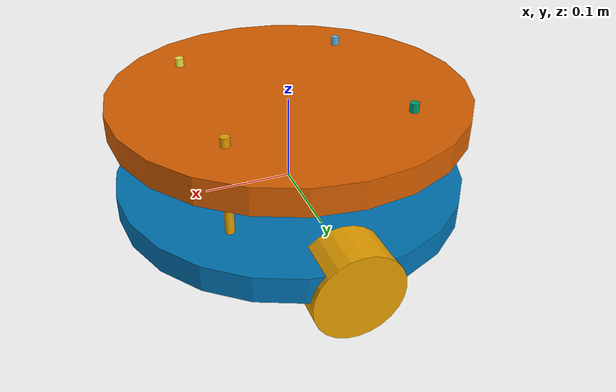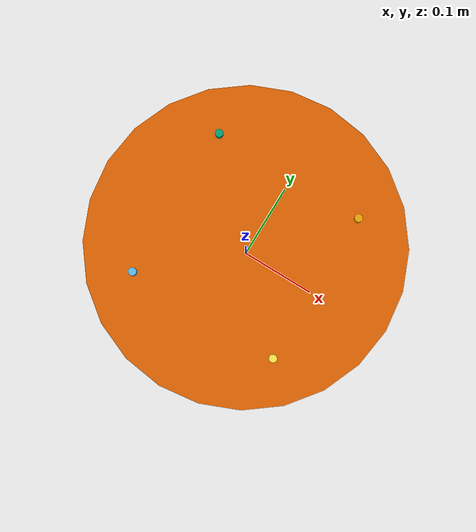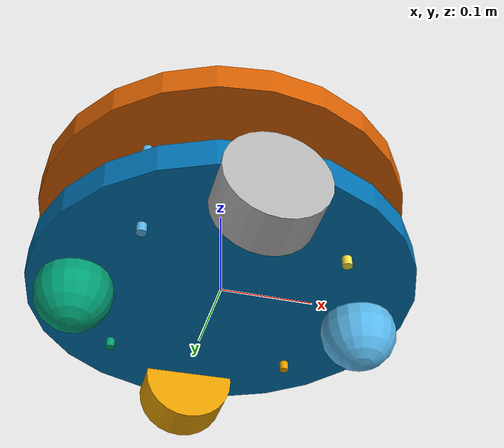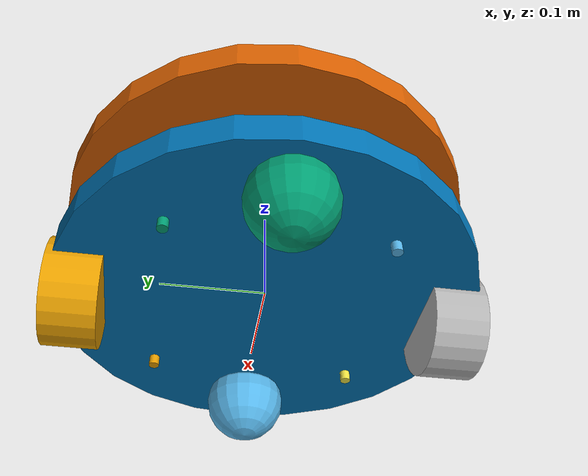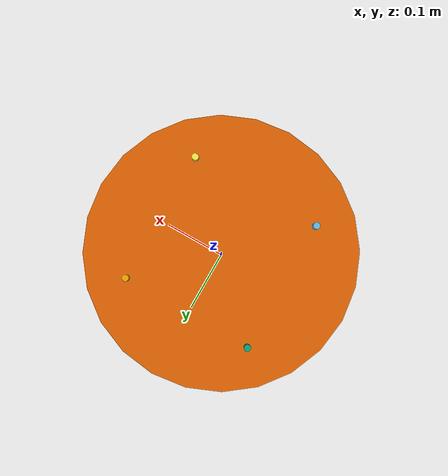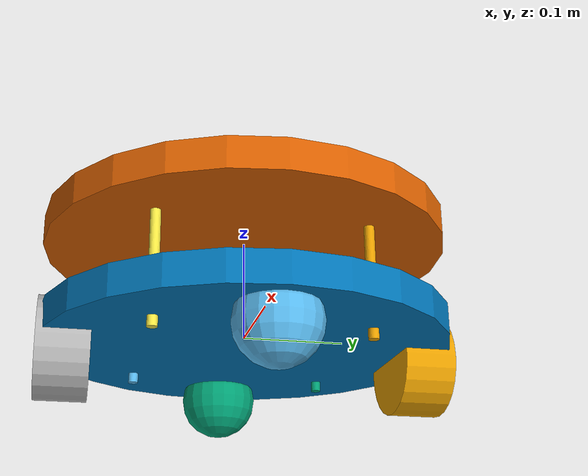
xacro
<?xml version="1.0"?>
<robot xmlns:xacro="http://ros.org/wiki/xacro" name="roboss">
    <xacro:include filename="$(find roboss_robot_description)/urdf/roboss_robot_base.xacro"/>
    <xacro:include filename="$(find roboss_robot_description)/urdf/roboss_robot_inertia.xacro"/>
    <xacro:include filename="$(find roboss_robot_description)/urdf/roboss_robot_wheel.xacro"/>
    <xacro:include filename="$(find roboss_robot_description)/urdf/roboss_robot_differential.xacro"/>
    <xacro:include filename="$(find roboss_robot_description)/urdf/roboss_robot_laser.xacro"/>
    <xacro:include filename="$(find roboss_robot_description)/urdf/roboss_robot_pole.xacro"/>
    <xacro:include filename="$(find roboss_robot_description)/urdf/roboss_robot_upper.xacro"/>

    <xacro:roboss_robot_pole xyz_pose="0.1 0.1 0.05" yon="left_1"/>
    <xacro:roboss_robot_pole xyz_pose="-0.1 -0.1 0.05" yon="right_1"/>
    <xacro:roboss_robot_pole xyz_pose="-0.1 0.1 0.05" yon="left_2"/>
    <xacro:roboss_robot_pole xyz_pose="0.1 -0.1 0.05" yon="right_2"/>
    <xacro:roboss_robot_base/>
    <xacro:roboss_robot_upper/>
    <xacro:roboss_robot_differential/>
    <xacro:roboss_robot_laser/>
    <xacro:roboss_robot_wheel xyz_konum="0.0 -0.175 -0.02" rpy_konum="0 0 0" yon="right"/>
    <xacro:roboss_robot_wheel xyz_konum="0.0 0.175 -0.02" rpy_konum="0 0 0" yon="left"/>
    <xacro:roboss_robot_caster_wheel xyz_konum="0.15 0.0 -0.03" rpy_konum="0 0 0" yon="front"/>
    <xacro:roboss_robot_caster_wheel xyz_konum="-0.15 0.0 -0.03" rpy_konum="0 0 0" yon="back"/>
</robot>

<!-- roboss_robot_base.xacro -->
<robot xmlns:xacro="http://ros.org/wiki/xacro">
  <xacro:macro name="roboss_robot_base">
     <link name="base_footprint">
       <collision>
         <origin xyz="0 0 0" rpy="0 0 0"/>
         <geometry>
            <cylinder length="0.03" radius="0.2"/>
         </geometry>
       </collision>
       <visual>
         <origin xyz="0 0 0" rpy="0 0 0"/>
         <geometry>
            <cylinder length="0.03" radius="0.2"/>
         </geometry>
       </visual>
       <xacro:cylinder_inertial radius="0.2" length="0.03" mass="10.0"/>
     </link>

     <gazebo reference="base_footprint">
       <material value="Gazebo/Blue"/>
     </gazebo>
  </xacro:macro>
</robot>

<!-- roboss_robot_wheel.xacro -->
<robot xmlns:xacro="http://ros.org/wiki/xacro">
  <xacro:macro name="roboss_robot_wheel" params="xyz_konum rpy_konum yon">
    <link name="wheel_${yon}_link">
      <collision>
        <origin xyz="0 0 0" rpy="0 1.570796 1.570796" />
        <geometry>
          <cylinder radius="0.05" length="0.05" />
        </geometry>
      </collision>
      <visual>
        <origin xyz="0 0 0" rpy="0 1.570796 1.570796" />
        <geometry>
          <cylinder radius="0.05" length="0.05" />
        </geometry>
      </visual>
      <xacro:cylinder_inertial radius="0.05" length="0.05" mass="0.5" />
    </link>

    <joint name="wheel_${yon}_base" type="continuous">
      <origin xyz="${xyz_konum}" rpy="${rpy_konum}" />
      <parent link="base_footprint" />
      <child link="wheel_${yon}_link" />
      <axis xyz="0 1 0" />
    </joint>

    <gazebo reference="wheel_${yon}_link">
      <material value="Gazebo/Black" />
    </gazebo>

  </xacro:macro>

  <xacro:macro name="roboss_robot_caster_wheel" params="xyz_konum rpy_konum yon">
    <link name="caster_wheel_${yon}_link">
      <collision>
         <origin xyz="0 0 0" rpy="0 0 0"/>
         <geometry>
           <sphere radius="0.04"/>
         </geometry>
      </collision>
      <visual>
         <origin xyz="0 0 0" rpy="0 0 0"/>
         <geometry>
           <sphere radius="0.04"/>
         </geometry>
      </visual>
      <xacro:sphere_inertial radius="0.04" mass="0.05"/>
    </link>

    <joint name="caster_wheel_${yon}_base" type="continuous">
      <origin xyz="${xyz_konum}" rpy="${rpy_konum}"/>
      <parent link="base_footprint"/>
      <child link="caster_wheel_${yon}_link"/>
      <axis xyz="1 1 1"/>
    </joint>

    <gazebo reference="caster_wheel_${yon}_link">
      <material value="Gazebo/White"/>
    </gazebo>

  </xacro:macro>

</robot>

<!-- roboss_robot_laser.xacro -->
<robot xmlns:xacro="http://ros.org/wiki/xacro">
  <xacro:macro name="roboss_robot_laser">
     <link name="laser_link">
       <collision>
         <origin xyz="0 0 0" rpy="0 0 0"/>
         <geometry>
            <cylinder radius="0.025" length="0.025"/>
         </geometry>
       </collision>
       <visual>
         <origin xyz="0 0 0" rpy="0 0 0"/>
         <geometry>
            <cylinder radius="0.025" length="0.025"/>
         </geometry>
       </visual>
       <xacro:cylinder_inertial radius="0.025" length="0.025" mass="0.02"/>
    </link>
    <joint name="base_to_laser" type="fixed">
      <origin xyz="0.0 0.0 0.035" rpy="0 0 0"/>
      <parent link="base_footprint"/>
      <child link="laser_link"/>
    </joint>
   <gazebo reference="laser_link">
    <material value="Gazebo/Black"/>
    <sensor type="gpu_ray" name="head_hokuyo_sensor">
      <pose>0 0 0 0 0 0</pose>
      <visualize>false</visualize>
      <update_rate>40</update_rate>
      <ray>
        <scan>
          <horizontal>
            <samples>720</samples>
            <resolution>1</resolution>
            <min_angle>-3.1415</min_angle>
            <max_angle>3.1415</max_angle>
          </horizontal>
        </scan>
        <range>
          <min>0.10</min>
          <max>10.0</max>
          <resolution>0.01</resolution>
        </range>
        <noise>
          <type>gaussian</type>
          <mean>0.0</mean>
          <stddev>0.01</stddev>
        </noise>
      </ray>
      <plugin name="gazebo_ros_head_hokuyo_controller" filename="libgazebo_ros_gpu_laser.so">
        <topicName>scan</topicName>
        <frameName>laser_link</frameName>
      </plugin>
    </sensor>
  </gazebo>
  </xacro:macro>
</robot>

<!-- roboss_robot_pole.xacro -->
<robot xmlns:xacro="http://ros.org/wiki/xacro">
  <xacro:macro name="roboss_robot_pole" params="xyz_pose yon">
     <link name="base_${yon}_pole">
       <collision>
         <origin xyz="0 0 0" rpy="0 0 0"/>
         <geometry>
            <cylinder length="0.1" radius="0.005"/>
         </geometry>
       </collision>
       <visual>
         <origin xyz="0 0 0" rpy="0 0 0"/>
         <geometry>
            <cylinder length="0.15" radius="0.005"/>
         </geometry>
       </visual>
       <xacro:cylinder_inertial radius="0.005" length="0.1" mass="0.001"/>
     </link>

     <joint name="base_${yon}_pole" type="fixed">
      <origin xyz="${xyz_pose}" rpy="0 0 0"/>
      <parent link="base_footprint"/>
      <child link="base_${yon}_pole"/>
    </joint>
   <gazebo reference="base_${yon}_pole">
    <material value="Gazebo/White"/>
   </gazebo>
  </xacro:macro>
</robot>

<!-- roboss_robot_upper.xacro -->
<robot xmlns:xacro="http://ros.org/wiki/xacro">
  <xacro:macro name="roboss_robot_upper">
     <link name="base_upper">
       <collision>
         <origin xyz="0 0 0" rpy="0 0 0"/>
         <geometry>
            <cylinder length="0.03" radius="0.2"/>
         </geometry>
       </collision>
       <visual>
         <origin xyz="0 0 0" rpy="0 0 0"/>
         <geometry>
            <cylinder length="0.03" radius="0.2"/>
         </geometry>
       </visual>
       <xacro:cylinder_inertial radius="0.2" length="0.03" mass="10.0"/>
     </link>

     <joint name="base_upper" type="fixed">
      <origin xyz="0.0 0.0 0.1" rpy="0 0 0"/>
      <parent link="base_footprint"/>
      <child link="base_upper"/>
    </joint>
   <gazebo reference="base_upper">
    <material value="Gazebo/Blue"/>
   </gazebo>
  </xacro:macro>
</robot>
